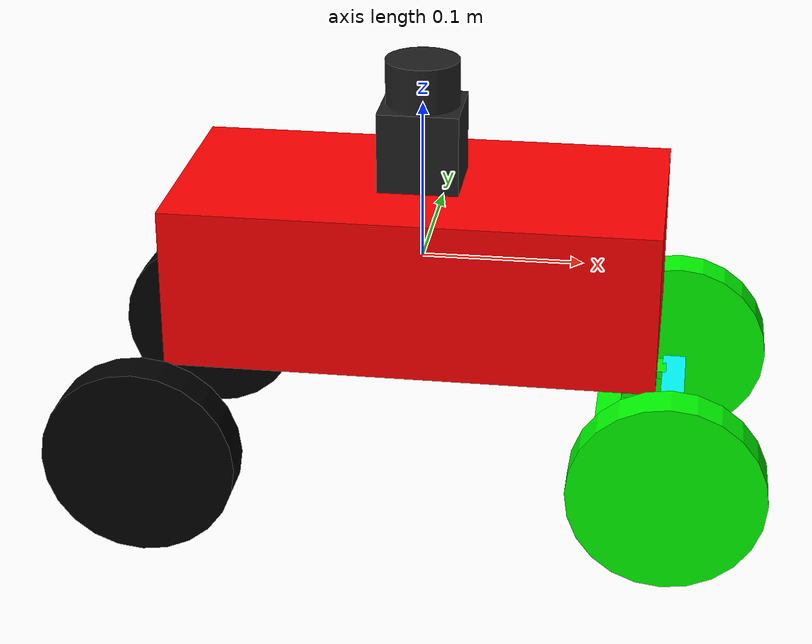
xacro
<?xml version="1.0"?>
<robot
    xmlns:gazebo="http://playerstage.sourceforge.net/gazebo/xmlschema/#gz"
    xmlns:model="http://playerstage.sourceforge.net/gazebo/xmlschema/#model"
    xmlns:sensor="http://playerstage.sourceforge.net/gazebo/xmlschema/#sensor"
    xmlns:body="http://playerstage.sourceforge.net/gazebo/xmlschema/#body"
    xmlns:geom="http://playerstage.sourceforge.net/gazebo/xmlschema/#geom"
    xmlns:joint="http://playerstage.sourceforge.net/gazebo/xmlschema/#joint"
    xmlns:controller="http://playerstage.sourceforge.net/gazebo/xmlschema/#controller"
    xmlns:interface="http://playerstage.sourceforge.net/gazebo/xmlschema/#interface"
    xmlns:rendering="http://playerstage.sourceforge.net/gazebo/xmlschema/#rendering"
    xmlns:physics="http://playerstage.sourceforge.net/gazebo/xmlschema/#physics"
    xmlns:xacro="http://www.ros.org/wiki/xacro"
    name="navgroup">

    <!-- Physical Constant Macros -->
    <xacro:property name="M_PI" value="3.1415926535897931" />

    <!-- Dimension Macros -->
    <xacro:property name="carLength" value="0.3" />
    <xacro:property name="carWidth" value="0.15" />
    <xacro:property name="carHeight" value="0.1" />
    <xacro:property name="wheelRadius" value="0.06" />
    <xacro:property name="wheelWidth" value="0.025" />

    <!-- Physical Material Macros -->
    <material name="Red">
    	<color rgba="1.0 0 0 1.0"/>
    </material>
    <material name="Green">
    	<color rgba="0 1.0 0 1.0"/>
    </material>
    <material name="Blue">
    	<color rgba="0 0 1.0 0.5"/>
    </material>
    <material name="Black">
    	<color rgba="0 0 0 1.0"/>
    </material>
    <material name="Aqua">
    	<color rgba="0 1.0 1.0 1.0"/>
    </material>

    <!-- Main body -->
    <link name="base_link">
        <inertial>
            <mass value="0.2" />
            <origin xyz="0 0 0" />
            <inertia  ixx="0.2" ixy="0.0"  ixz="0.0"  iyy="0.2"  iyz="0.0"  izz="0.2" />
        </inertial>
        <visual>
            <origin xyz="0 0 0" rpy="0 0 0" />
            <geometry>
                <box size="${carLength} ${carWidth} ${carHeight}" />
            </geometry>
            <material name="Red"/>
        </visual>
        <collision>
            <origin xyz="0 0 0" rpy="0 0 0" />
            <geometry>
                <box size="${carLength} ${carWidth} ${carHeight}" />
            </geometry>
        </collision>
    </link>
    <gazebo reference="base_link">
        <material>Gazebo/Red</material>
    </gazebo>

    <!-- Front link of Ackermann -->
    <!-- Joins to the Car body -->
    <joint name="front_joint" type="fixed">
    	<parent link="base_link"/>
    	<child link="front_link"/>
    	<origin xyz="0.16 0.0 -0.1"/>
    </joint>
    <link name="front_link">
        <inertial>
            <mass value="0.01" />
            <origin xyz="0 0 0" />
            <inertia  ixx="0.01" ixy="0.0"  ixz="0.0"  iyy="0.01"  iyz="0.0"  izz="0.01" />
        </inertial>
        <visual>
            <geometry>
                <box size="${carLength*0.05} ${carWidth} ${carHeight*0.05}" />
            </geometry>
            <material name="Aqua"/>
        </visual>
        <collision>
            <geometry>
                <box size="${carLength*0.05} ${carWidth} ${carHeight*0.05}" />
            </geometry>
        </collision>
    </link>
    <gazebo reference="front_link">
        <material>Gazebo/Green</material>
    </gazebo>

    <!-- a link aligned with the steer direction -->
    <joint name="steer_joint" type="revolute" >
        <limit lower="-0.5" upper="0.5" effort="100" velocity="10" />
        <axis xyz="0 0 1" />
        <parent link="front_link" />
        <child link="steer_link" />
        <origin xyz="0.0 0.0 0.0" rpy="0 0 0" />
    </joint>
    <link name="steer_link">
        <inertial>
            <mass value="0.01" />
            <origin xyz="0 0 0" />
            <inertia  ixx="0.01" ixy="0.0"  ixz="0.0"  iyy="0.01"  iyz="0.0"  izz="0.01" />
        </inertial>
        <visual>
            <origin xyz="-0.02 0 0" />
            <geometry>
                <box size="${carLength*0.1} ${carWidth*0.133} ${carHeight*0.05}" />
            </geometry>
            <material name="Green"/>
        </visual>
        <collision>
            <origin xyz="0.02 0 0" />
            <geometry>
                <box size="${carLength*0.1} ${carWidth*0.133} ${carHeight*0.05}" />
            </geometry>
        </collision>
    </link>
    <gazebo reference="steer_link">
        <material>Gazebo/Green</material>
    </gazebo>

    <!-- the left Ackermann bar -->
    <joint name="front_left_bar_joint" type="revolute" >
        <limit lower="-0.5" upper="0.5" effort="100" velocity="10" />
        <axis xyz="0 0 1" />
        <parent link="front_link" />
        <child link="front_left_bar_link" />
        <origin xyz="0.0 0.06 0.0" rpy="0 0 0" />
    </joint>
    <link name="front_left_bar_link">
        <inertial>
            <mass value="0.01" />
            <origin xyz="0 0 0" />
            <inertia  ixx="0.01" ixy="0.0"  ixz="0.0"  iyy="0.01"  iyz="0.0"  izz="0.01" />
        </inertial>
        <visual>
            <origin xyz="-0.02 0 0" />
            <geometry>
                <box size="${carLength*0.1} ${carWidth*0.133} ${carHeight*0.05}" />
            </geometry>
            <material name="Green"/>
        </visual>
        <collision>
            <origin xyz="-0.02 0 0" />
            <geometry>
                <box size="${carLength*0.1} ${carWidth*0.133} ${carHeight*0.05}" />
            </geometry>
        </collision>
    </link>
    <gazebo reference="front_left_bar_link">
        <material>Gazebo/Green</material>
    </gazebo>

    <!-- the right Ackermann bar -->
    <joint name="front_right_bar_joint" type="revolute" >
        <limit lower="-0.5" upper="0.5" effort="100" velocity="10" />
        <axis xyz="0 0 1" />
        <parent link="front_link" />
        <child link="front_right_bar_link" />
        <origin xyz="0.0 -0.06 0.0" rpy="0 0 0" />
    </joint>
    <link name="front_right_bar_link">
        <inertial>
            <mass value="0.01" />
            <origin xyz="0 0 0" />
            <inertia  ixx="0.01" ixy="0.0"  ixz="0.0"  iyy="0.01"  iyz="0.0"  izz="0.01" />
        </inertial>
        <visual>
            <origin xyz="-0.02 0 0" />
            <geometry>
                <box size="${carLength*0.1} ${carWidth*0.133} ${carHeight*0.05}" />
            </geometry>
            <material name="Green"/>
        </visual>
        <collision>
            <origin xyz="-0.02 0 0" />
            <geometry>
                <box size="${carLength*0.1} ${carWidth*0.133} ${carHeight*0.05}" />
            </geometry>
        </collision>
    </link>
    <gazebo reference="front_right_bar_link">
        <material>Gazebo/Green</material>
    </gazebo>

	<!-- the front left wheel -->
    <joint name="front_left_wheel_joint" type="continuous" >
        <axis xyz="0 1 0" />
        <parent link="front_left_bar_link" />
        <child link="front_left_wheel_link" />
        <origin xyz="0 0.04 0" rpy="0 0 0" />
    </joint>
    <link name="front_left_wheel_link">
        <inertial>
            <mass value="0.01" />
            <origin xyz="0 0 0" />
            <inertia  ixx="0.01" ixy="0.0"  ixz="0.0"  iyy="0.01"  iyz="0.0"  izz="0.01" />
        </inertial>
        <visual>
            <origin xyz="0 0 0" rpy="${M_PI/2} 0 0" />
            <geometry>
                <cylinder radius="${wheelRadius}" length="${wheelWidth}" />
            </geometry>
            <material name="Green"/>
        </visual>
        <collision>
            <origin xyz="0 0 0" rpy="${M_PI/2} 0 0" />
            <geometry>
                <cylinder radius="${wheelRadius}" length="${wheelWidth}" />
            </geometry>
        </collision>
    </link>
    <gazebo reference="front_left_wheel_link">
        <material>Gazebo/Green</material>
    </gazebo>

	<!-- the front right wheel -->
    <joint name="front_right_wheel_joint" type="continuous" >
        <axis xyz="0 1 0" />
        <parent link="front_right_bar_link" />
        <child link="front_right_wheel_link" />
        <origin xyz="0 -0.04 0" rpy="0 0 0" />
    </joint>
    <link name="front_right_wheel_link">
        <inertial>
            <mass value="0.01" />
            <origin xyz="0 0 0" />
            <inertia  ixx="0.01" ixy="0.0"  ixz="0.0"  iyy="0.01"  iyz="0.0"  izz="0.01" />
        </inertial>
        <visual>
            <origin xyz="0 0 0" rpy="${M_PI/2} 0 0" />
            <geometry>
                <cylinder radius="${wheelRadius}" length="${wheelWidth}" />
            </geometry>
            <material name="Green"/>
        </visual>
        <collision>
            <origin xyz="0 0 0" rpy="${M_PI/2} 0 0" />
            <geometry>
                <cylinder radius="${wheelRadius}" length="${wheelWidth}" />
            </geometry>
        </collision>
    </link>
    <gazebo reference="front_right_wheel_link">
        <material>Gazebo/Green</material>
        <turnGravityOff>false</turnGravityOff>
    </gazebo>

	<!-- the Ackerman bar -->
    <joint name="ackermann_joint" type="revolute" >
        <limit lower="-0.5" upper="0.5" effort="100" velocity="10" />
        <axis xyz="0 0 1" />
        <parent link="steer_link" />
        <child link="ackermann_bar_link" />
        <origin xyz="-0.04 0 0" rpy="0 0 0" />
    </joint>
    <link name="ackermann_bar_link">
        <inertial>
            <mass value="0.01" />
            <origin xyz="0 0 0" />
            <inertia  ixx="0.01" ixy="0.0"  ixz="0.0"  iyy="0.01"  iyz="0.0"  izz="0.01" />
        </inertial>
        <visual>
            <geometry>
                <box size="${carLength*0.05} ${carWidth} ${carHeight*0.1}" />
            </geometry>
            <material name="Green"/>
        </visual>
        <collision>
            <geometry>
                <box size="${carLength*0.05} ${carWidth} ${carHeight*0.1}" />
            </geometry>
        </collision>
    </link>
    <gazebo reference="front_link">
        <material>Gazebo/Green</material>
    </gazebo>
    <gazebo reference="ackermann_bar_link">
        <material>Gazebo/Blue</material>
    </gazebo>

	<!-- Gazebo Ackermann loop joints -->
    <gazebo>
      <joint:hinge name="ackermann_left_bar_joint">
        <body1>ackermann_bar_link</body1>
        <body2>front_left_bar_link</body2>
        <anchor>ackermann_bar_link</anchor>
        <axis>0 0 1</axis>
        <anchorOffset>0 0.06 0</anchorOffset>
      </joint:hinge>
    </gazebo>
    <gazebo>
      <joint:hinge name="ackermann_right_bar_joint">
        <body1>ackermann_bar_link</body1>
        <body2>front_right_bar_link</body2>
        <anchor>ackermann_bar_link</anchor>
        <axis>0 0 1</axis>
        <anchorOffset>0 -0.06 0</anchorOffset>
      </joint:hinge>
    </gazebo>

	<!-- the back left wheel -->
    <joint name="back_left_wheel_joint" type="continuous" >
        <axis xyz="0 1 0" />
        <parent link="base_link" />
        <child link="back_left_wheel_link" />
        <origin xyz="-0.16 0.1 -0.1" rpy="0 0 0" />
    </joint>
    <link name="back_left_wheel_link">
        <inertial>
            <mass value="0.01" />
            <origin xyz="0 0 0" />
            <inertia  ixx="0.01" ixy="0.0"  ixz="0.0"  iyy="0.01"  iyz="0.0"  izz="0.01" />
        </inertial>
        <visual>
            <origin xyz="0 0 0" rpy="${M_PI/2} 0 0" />
            <geometry>
                <cylinder radius="${wheelRadius}" length="${wheelWidth}" />
            </geometry>
            <material name="Black"/>
        </visual>
        <collision>
            <origin xyz="0 0 0" rpy="${M_PI/2} 0 0" />
            <geometry>
                <cylinder radius="${wheelRadius}" length="${wheelWidth}" />
            </geometry>
        </collision>
    </link>
    <gazebo reference="back_left_wheel_link">
        <material>Gazebo/Black</material>
    </gazebo>

	<!-- the back right wheel -->
    <joint name="back_right_wheel_joint" type="continuous" >
        <axis xyz="0 1 0" />
        <parent link="base_link" />
        <child link="back_right_wheel_link" />
        <origin xyz="-0.16 -0.1 -0.1" rpy="0 0 0" />
    </joint>
    <link name="back_right_wheel_link">
        <inertial>
            <mass value="0.01" />
            <origin xyz="0 0 0" />
            <inertia  ixx="0.01" ixy="0.0"  ixz="0.0"  iyy="0.01"  iyz="0.0"  izz="0.01" />
        </inertial>
        <visual>
            <origin xyz="0 0 0" rpy="${M_PI/2} 0 0" />
            <geometry>
                <cylinder radius="${wheelRadius}" length="${wheelWidth}" />
            </geometry>
            <material name="Black"/>
        </visual>
        <collision>
            <origin xyz="0 0 0" rpy="${M_PI/2} 0 0" />
            <geometry>
                <cylinder radius="${wheelRadius}" length="${wheelWidth}" />
            </geometry>
        </collision>
    </link>
    <gazebo reference="back_right_wheel_link">
        <material>Gazebo/Black</material>
    </gazebo>

    <!-- Ackermann plugin -->
    <gazebo>
      <controller:ackermann_plugin name="ackermann_controller"
			           plugin="libackermann_plugin.so">
        <alwaysOn>true</alwaysOn>
        <update>100</update>
        <updateRate>100.0</updateRate>
        <leftJoint>back_left_wheel_joint</leftJoint>
        <rightJoint>back_right_wheel_joint</rightJoint>
        <steerJoint>steer_joint</steerJoint>
        <wheelSeparationWidth>0.16</wheelSeparationWidth>
        <wheelSeparationLength>0.32</wheelSeparationLength>
        <wheelDiameter>0.041</wheelDiameter>
        <driveTorque>5</driveTorque>
        <steerTorque>5</steerTorque>
        <interface:position name="position_iface_0" />
        <robotNamespace>/</robotNamespace>
        <topicName>pilot/drive</topicName>
      </controller:ackermann_plugin>

     <canonicalBody>base_footprint</canonicalBody>

    <!-- this publishes empty joint_states due to no transmission, but
    triggering robot_state_publisher to publish tf between fixed joints in erratic,
    (e.g. base_laser_link for the base_scan frame) -->
        <controller:gazebo_ros_controller_manager name="gazebo_ros_controller_manager" plugin="libgazebo_ros_controller_manager.so">
        <alwaysOn>true</alwaysOn>
        <updateRate>100.0</updateRate>
        <interface:audio name="gazebo_ros_controller_manager_dummy_iface" />
        </controller:gazebo_ros_controller_manager>

    </gazebo>

        <joint name="laser_base_mount_joint" type="fixed">
            <origin xyz="0 0 0.05" rpy="0 0 0" />
            <parent link="base_link"/>
            <child link="laser_base_link"/>
        </joint>

        <link name="laser_base_link" type="fixed">
            <inertial>
                <mass value="0.1"/>
                <origin xyz="0 0 0.0"/>
                <inertia ixx="0.1" ixy="0" ixz="0" iyy="0.1" iyz="0" izz="0.1"/>
            </inertial>

            <visual>
                <origin rpy="0 0 0" xyz="0 0 0.025"/>
                <geometry>
                    <box size="0.05 0.05 0.05"/>
                </geometry>
            </visual>

            <collision>
                <origin rpy="0 0 0" xyz="0 0 0.025"/>
                <geometry>
                    <box size="0.05 0.05 0.05"/>
                </geometry>
            </collision>
        </link>

        <joint name="base_scan_joint" type="fixed" >
            <origin xyz="0 0 0.05" rpy="0 0 0" />
            <parent link="laser_base_link" />
            <child link="base_scan_link"/>
        </joint>

        <link name="base_scan_link" type="laser">
            <inertial>
                <mass value="0.1"/>
                <origin xyz="0 0 0.0"/>
                <inertia ixx="0.1" ixy="0" ixz="0" iyy="0.1" iyz="0" izz="0.1"/>
            </inertial>

            <visual>
                <origin rpy="0 0 0" xyz="0 0 0.014"/>
                <geometry>
                    <cylinder radius="0.0229" length="0.028"/>
                </geometry>
            </visual>

            <collision>
                <origin rpy="0 0 0" xyz="0 0 0.014"/>
                <geometry>
                    <cylinder radius="0.0229" length="0.028"/>
                </geometry>
            </collision>
        </link>

        <gazebo reference="base_scan_link">
            <sensor:ray name="laser">
                <rayCount>683</rayCount>
                <rangeCount>683</rangeCount>
                <laserCount>1</laserCount>

                <origin>0.0 0.0 0.0</origin>
                <displayRays>false</displayRays>

                <minAngle>-135</minAngle>
                <maxAngle> 135</maxAngle>

                <minRange>0.06</minRange>
                <maxRange>4.0</maxRange>
                <resRange>0.001</resRange>
                <updateRate>10.0</updateRate>

                <controller:gazebo_ros_laser name="gazebo_ros_base_scan_link_controller" plugin="libgazebo_ros_laser.so">
                    <gaussianNoise>0.005</gaussianNoise>
                    <alwaysOn>true</alwaysOn>
                    <updateRate>10.0</updateRate>
                    <topicName>base_scan/scan</topicName>
                    <frameName>base_scan_link</frameName>
                    <interface:laser name="gazebo_ros_base_scan_link_iface"/>
                </controller:gazebo_ros_laser>
            </sensor:ray>
        </gazebo>

        <gazebo reference="laser_base_link">
            <material>Gazebo/Black</material>
        </gazebo>

        <gazebo reference="base_scan_link">
            <material>Gazebo/Black</material>
        </gazebo>
</robot>
